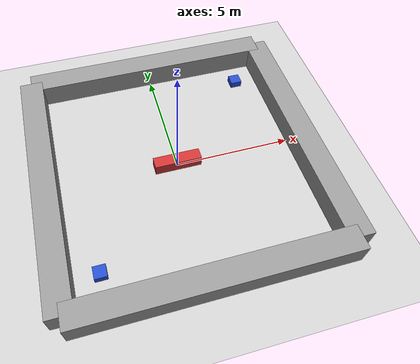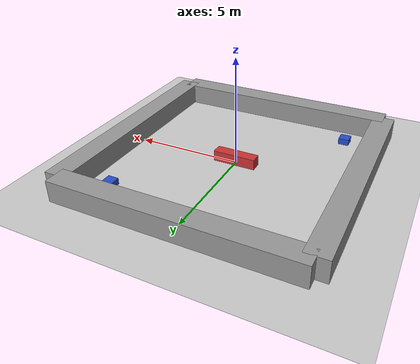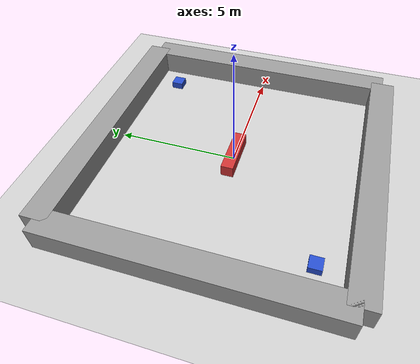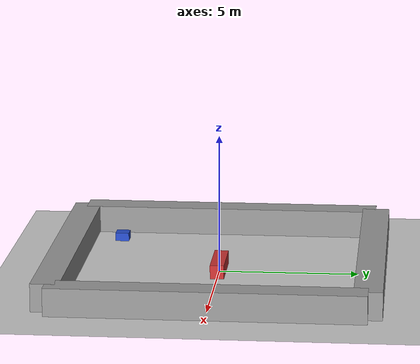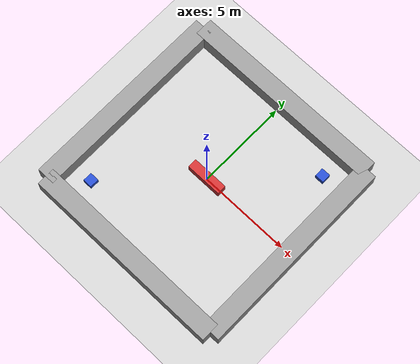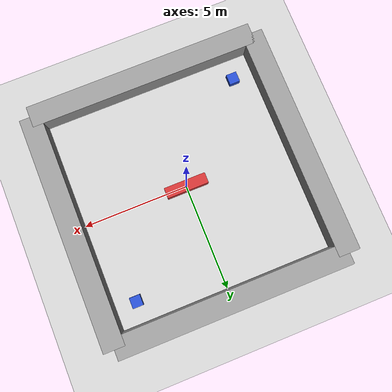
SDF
<sdf version="1.6">
 <world name="battlebot_arena">
  <physics name="default_physics" default="true" type="ode">
   <max_step_size>0.001</max_step_size>
   <real_time_factor>1</real_time_factor>
   <real_time_update_rate>1000</real_time_update_rate>
   <ode>
    <solver>
     <type>quick</type>
     <iters>250</iters>
     <sor>1.3</sor>
     <use_dynamic_moi_rescaling>0</use_dynamic_moi_rescaling>
    </solver>
    <constraints>
     <cfm>0</cfm>
     <erp>0.2</erp>
     <contact_max_correcting_vel>100</contact_max_correcting_vel>
     <contact_surface_layer>0.005</contact_surface_layer>
    </constraints>
   </ode>
  </physics>
  <light type="directional" name="sun">
   <pose>0 0 10 0 0 0</pose>
   <diffuse>0.8 0.8 0.8 1</diffuse>
   <specular>0.2 0.2 0.2 1</specular>
   <direction>-0.5 0.1 -0.9</direction>
  </light>
  <model name="ground_plane">
   <static>true</static>
   <link name="link">
    <collision name="collision">
     <geometry><plane><normal>0 0 1</normal><size>10 10</size></plane></geometry>
    </collision>
    <visual name="visual"><geometry><plane><normal>0 0 1</normal><size>10 10</size></plane></geometry></visual>
   </link>
  </model>
  <model name="arena_walls">
   <static>true</static>
   <link name="wall_link">
    <collision name="north_wall">
     <pose>0 5.5 0.5 0 0 0</pose>
     <geometry><box><size>11 1 1</size></box></geometry>
    </collision>
    <visual name="north_wall_visual">
     <pose>0 5.5 0.5 0 0 0</pose>
     <geometry><box><size>11 1 1</size></box></geometry>
     <material><diffuse>0.6 0.6 0.6 1</diffuse></material>
    </visual>
    <collision name="south_wall">
     <pose>0 -5.5 0.5 0 0 0</pose>
     <geometry><box><size>11 1 1</size></box></geometry>
    </collision>
    <visual name="south_wall_visual">
     <pose>0 -5.5 0.5 0 0 0</pose>
     <geometry><box><size>11 1 1</size></box></geometry>
     <material><diffuse>0.6 0.6 0.6 1</diffuse></material>
    </visual>
    <collision name="east_wall">
     <pose>5.5 0 0.5 0 0 0</pose>
     <geometry><box><size>1 11 1</size></box></geometry>
    </collision>
    <visual name="east_wall_visual">
     <pose>5.5 0 0.5 0 0 0</pose>
     <geometry><box><size>1 11 1</size></box></geometry>
     <material><diffuse>0.6 0.6 0.6 1</diffuse></material>
    </visual>
    <collision name="west_wall">
     <pose>-5.5 0 0.5 0 0 0</pose>
     <geometry><box><size>1 11 1</size></box></geometry>
    </collision>
    <visual name="west_wall_visual">
     <pose>-5.5 0 0.5 0 0 0</pose>
     <geometry><box><size>1 11 1</size></box></geometry>
     <material><diffuse>0.6 0.6 0.6 1</diffuse></material>
    </visual>
   </link>
  </model>
  <model name="moving_obstacle">
   <pose>0 0 0.25 0 0 0</pose>
   <static>false</static>
   <link name="link">
    <gravity>0</gravity>
    <inertial>
     <mass>200</mass>
     <inertia><ixx>999</ixx><iyy>999</iyy><izz>999</izz><ixy>0.0</ixy><ixz>0.0</ixz><iyz>0.0</iyz></inertia>
    </inertial>
    <visual name="visual">
     <geometry><box><size>2 0.5 0.5</size></box></geometry>
     <material><diffuse>0.8 0.2 0.2 1</diffuse></material>
    </visual>
    <collision name="moving_obstacle_collision">
     <geometry><box><size>2 0.5 0.5</size></box></geometry>
     <surface>
      <friction><ode><mu>100.0</mu><mu2>100.0</mu2></ode></friction>
      <contact><ode><kp>100000.0</kp><kd>1.0</kd><max_vel>0.1</max_vel><min_depth>0.003</min_depth></ode></contact>
     </surface>
    </collision>
    <sensor name="contact_sensor" type="contact">
     <always_on>true</always_on>
     <update_rate>30</update_rate>
     <contact><collision>moving_obstacle_collision</collision></contact>
     <plugin name="contact_plugin" filename="libgazebo_ros_bumper.so">
      <ros><namespace>/moving_obstacle</namespace><remapping>bumper_states:=contact</remapping></ros>
      <frame_name>moving_obstacle</frame_name>
     </plugin>
    </sensor>
   </link>
   <plugin name="planar_move_plugin" filename="libgazebo_ros_planar_move.so">
    <ros><namespace>/moving_obstacle</namespace></ros>
   </plugin>
  </model>
  <model name="healing_pack_1">
   <static>true</static>
   <pose>4 4 0.15 0 0 0</pose>
   <link name="link">
    <visual name="visual">
     <geometry><box><size>0.5 0.5 0.3</size></box></geometry>
     <material>
      <script><uri>file://media/materials/scripts/gazebo.material</uri><name>Gazebo/Blue</name></script>
     </material>
    </visual>
    <collision name="collision"><geometry><box><size>0.5 0.5 0.3</size></box></geometry></collision>
    <sensor name="contact_sensor" type="contact">
     <always_on>true</always_on>
     <update_rate>10</update_rate>
     <contact><collision>collision</collision></contact>
     <plugin name="contact_plugin" filename="libgazebo_ros_bumper.so">
      <ros><namespace>/healing_pack_1</namespace><remapping>bumper_states:=contact</remapping></ros>
      <frame_name>link</frame_name>
     </plugin>
    </sensor>
   </link>
  </model>
  <model name="healing_pack_2">
   <static>true</static>
   <pose>-4 -4 0.15 0 0 0</pose>
   <link name="link">
    <visual name="visual">
     <geometry><box><size>0.5 0.5 0.3</size></box></geometry>
     <material>
      <script><uri>file://media/materials/scripts/gazebo.material</uri><name>Gazebo/Blue</name></script>
     </material>
    </visual>
    <collision name="collision"><geometry><box><size>0.5 0.5 0.3</size></box></geometry></collision>
    <sensor name="contact_sensor" type="contact">
     <always_on>true</always_on>
     <update_rate>10</update_rate>
     <contact><collision>collision</collision></contact>
     <plugin name="contact_plugin" filename="libgazebo_ros_bumper.so">
      <ros><namespace>/healing_pack_2</namespace><remapping>bumper_states:=contact</remapping></ros>
      <frame_name>link</frame_name>
     </plugin>
    </sensor>
   </link>
  </model>
 </world>
</sdf>
